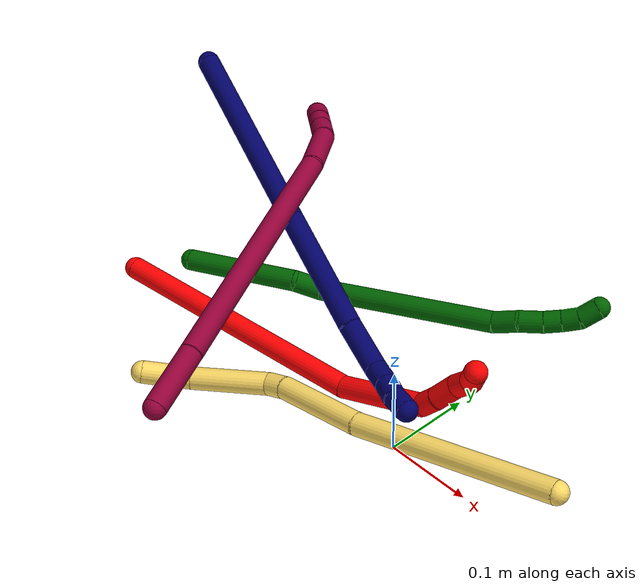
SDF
<sdf version="1.7">
 <world name="default">
  <model name="2">
   <static>0</static>
   <link name="2">
    <collision name="collision-cylinder-e_1_1_4">
     <pose>0.146229 0.02123 -0.027482 -2.48385 1.33763 -2.32636</pose>
     <geometry><cylinder><radius>0.0125</radius><length>0.300592</length></cylinder></geometry>
     <surface>
      <friction><ode><mu>1.16</mu><mu2>1.16</mu2><slip1>0</slip1><slip2>0</slip2></ode></friction>
      <contact><ode><kp>1e+06</kp><kd>1</kd><max_vel>0</max_vel><min_depth>0.001</min_depth></ode></contact>
     </surface>
    </collision>
    <visual name="visual-cylinder-e_1_1_4">
     <pose>0.146229 0.02123 -0.027482 -2.48385 1.33763 -2.32636</pose>
     <geometry><cylinder><radius>0.0125</radius><length>0.300592</length></cylinder></geometry>
     <material><ambient>1 0 0 1</ambient></material>
    </visual>
    <collision name="collision-cylinder-e_2_4_5">
     <pose>0.339623 0.036436 -0.078152 2.88744 1.10081 2.73106</pose>
     <geometry><cylinder><radius>0.0125</radius><length>0.105803</length></cylinder></geometry>
     <surface>
      <friction><ode><mu>1.16</mu><mu2>1.16</mu2><slip1>0</slip1><slip2>0</slip2></ode></friction>
      <contact><ode><kp>1e+06</kp><kd>1</kd><max_vel>0</max_vel><min_depth>0.001</min_depth></ode></contact>
     </surface>
    </collision>
    <visual name="visual-cylinder-e_2_4_5">
     <pose>0.339623 0.036436 -0.078152 2.88744 1.10081 2.73106</pose>
     <geometry><cylinder><radius>0.0125</radius><length>0.105803</length></cylinder></geometry>
     <material><ambient>1 0 0 1</ambient></material>
    </visual>
    <collision name="collision-cylinder-e_3_5_6">
     <pose>0.393759 0.024381 -0.107429 2.36093 0.682768 1.4246</pose>
     <geometry><cylinder><radius>0.0125</radius><length>0.022094</length></cylinder></geometry>
     <surface>
      <friction><ode><mu>1.16</mu><mu2>1.16</mu2><slip1>0</slip1><slip2>0</slip2></ode></friction>
      <contact><ode><kp>1e+06</kp><kd>1</kd><max_vel>0</max_vel><min_depth>0.001</min_depth></ode></contact>
     </surface>
    </collision>
    <visual name="visual-cylinder-e_3_5_6">
     <pose>0.393759 0.024381 -0.107429 2.36093 0.682768 1.4246</pose>
     <geometry><cylinder><radius>0.0125</radius><length>0.022094</length></cylinder></geometry>
     <material><ambient>1 0 0 1</ambient></material>
    </visual>
    <collision name="collision-cylinder-e_4_6_7">
     <pose>0.409081 0.009096 -0.120306 2.20373 0.629165 1.14184</pose>
     <geometry><cylinder><radius>0.0125</radius><length>0.028386</length></cylinder></geometry>
     <surface>
      <friction><ode><mu>1.16</mu><mu2>1.16</mu2><slip1>0</slip1><slip2>0</slip2></ode></friction>
      <contact><ode><kp>1e+06</kp><kd>1</kd><max_vel>0</max_vel><min_depth>0.001</min_depth></ode></contact>
     </surface>
    </collision>
    <visual name="visual-cylinder-e_4_6_7">
     <pose>0.409081 0.009096 -0.120306 2.20373 0.629165 1.14184</pose>
     <geometry><cylinder><radius>0.0125</radius><length>0.028386</length></cylinder></geometry>
     <material><ambient>1 0 0 1</ambient></material>
    </visual>
    <collision name="collision-cylinder-e_5_7_8">
     <pose>0.424549 -0.004786 -0.134119 2.5589 0.701964 1.76911</pose>
     <geometry><cylinder><radius>0.0125</radius><length>0.022039</length></cylinder></geometry>
     <surface>
      <friction><ode><mu>1.16</mu><mu2>1.16</mu2><slip1>0</slip1><slip2>0</slip2></ode></friction>
      <contact><ode><kp>1e+06</kp><kd>1</kd><max_vel>0</max_vel><min_depth>0.001</min_depth></ode></contact>
     </surface>
    </collision>
    <visual name="visual-cylinder-e_5_7_8">
     <pose>0.424549 -0.004786 -0.134119 2.5589 0.701964 1.76911</pose>
     <geometry><cylinder><radius>0.0125</radius><length>0.022039</length></cylinder></geometry>
     <material><ambient>1 0 0 1</ambient></material>
    </visual>
    <collision name="collision-cylinder-e_6_8_2">
     <pose>0.433682 -0.014312 -0.150262 2.64879 0.19258 0.733326</pose>
     <geometry><cylinder><radius>0.0125</radius><length>0.021087</length></cylinder></geometry>
     <surface>
      <friction><ode><mu>1.16</mu><mu2>1.16</mu2><slip1>0</slip1><slip2>0</slip2></ode></friction>
      <contact><ode><kp>1e+06</kp><kd>1</kd><max_vel>0</max_vel><min_depth>0.001</min_depth></ode></contact>
     </surface>
    </collision>
    <visual name="visual-cylinder-e_6_8_2">
     <pose>0.433682 -0.014312 -0.150262 2.64879 0.19258 0.733326</pose>
     <geometry><cylinder><radius>0.0125</radius><length>0.021087</length></cylinder></geometry>
     <material><ambient>1 0 0 1</ambient></material>
    </visual>
    <collision name="collision-sphere-2">
     <pose>0.4357 -0.019208 -0.159379 0 -0 0</pose>
     <geometry><sphere><radius>0.0125</radius></sphere></geometry>
     <surface>
      <friction><ode><mu>1.16</mu><mu2>1.16</mu2><slip1>0</slip1><slip2>0</slip2></ode></friction>
      <contact><ode><kp>1e+06</kp><kd>1</kd><max_vel>0</max_vel><min_depth>0.001</min_depth></ode></contact>
     </surface>
    </collision>
    <visual name="visual-sphere-2">
     <pose>0.4357 -0.019208 -0.159379 0 -0 0</pose>
     <geometry><sphere><radius>0.0125</radius></sphere></geometry>
     <material><ambient>1 0 0 1</ambient></material>
    </visual>
    <collision name="collision-sphere-4">
     <pose>0.292458 0.042459 -0.054964 0 -0 0</pose>
     <geometry><sphere><radius>0.0125</radius></sphere></geometry>
     <surface>
      <friction><ode><mu>1.16</mu><mu2>1.16</mu2><slip1>0</slip1><slip2>0</slip2></ode></friction>
      <contact><ode><kp>1e+06</kp><kd>1</kd><max_vel>0</max_vel><min_depth>0.001</min_depth></ode></contact>
     </surface>
    </collision>
    <visual name="visual-sphere-4">
     <pose>0.292458 0.042459 -0.054964 0 -0 0</pose>
     <geometry><sphere><radius>0.0125</radius></sphere></geometry>
     <material><ambient>1 0 0 1</ambient></material>
    </visual>
    <collision name="collision-sphere-1">
     <geometry><sphere><radius>0.0125</radius></sphere></geometry>
     <surface>
      <friction><ode><mu>1.16</mu><mu2>1.16</mu2><slip1>0</slip1><slip2>0</slip2></ode></friction>
      <contact><ode><kp>1e+06</kp><kd>1</kd><max_vel>0</max_vel><min_depth>0.001</min_depth></ode></contact>
     </surface>
    </collision>
    <visual name="visual-sphere-1">
     <geometry><sphere><radius>0.0125</radius></sphere></geometry>
     <material><ambient>1 0 0 1</ambient></material>
    </visual>
    <collision name="collision-sphere-8">
     <pose>0.431664 -0.009416 -0.141145 0 -0 0</pose>
     <geometry><sphere><radius>0.0125</radius></sphere></geometry>
     <surface>
      <friction><ode><mu>1.16</mu><mu2>1.16</mu2><slip1>0</slip1><slip2>0</slip2></ode></friction>
      <contact><ode><kp>1e+06</kp><kd>1</kd><max_vel>0</max_vel><min_depth>0.001</min_depth></ode></contact>
     </surface>
    </collision>
    <visual name="visual-sphere-8">
     <pose>0.431664 -0.009416 -0.141145 0 -0 0</pose>
     <geometry><sphere><radius>0.0125</radius></sphere></geometry>
     <material><ambient>1 0 0 1</ambient></material>
    </visual>
    <collision name="collision-sphere-5">
     <pose>0.386789 0.030412 -0.10134 0 -0 0</pose>
     <geometry><sphere><radius>0.0125</radius></sphere></geometry>
     <surface>
      <friction><ode><mu>1.16</mu><mu2>1.16</mu2><slip1>0</slip1><slip2>0</slip2></ode></friction>
      <contact><ode><kp>1e+06</kp><kd>1</kd><max_vel>0</max_vel><min_depth>0.001</min_depth></ode></contact>
     </surface>
    </collision>
    <visual name="visual-sphere-5">
     <pose>0.386789 0.030412 -0.10134 0 -0 0</pose>
     <geometry><sphere><radius>0.0125</radius></sphere></geometry>
     <material><ambient>1 0 0 1</ambient></material>
    </visual>
    <collision name="collision-sphere-6">
     <pose>0.400729 0.018349 -0.113518 0 -0 0</pose>
     <geometry><sphere><radius>0.0125</radius></sphere></geometry>
     <surface>
      <friction><ode><mu>1.16</mu><mu2>1.16</mu2><slip1>0</slip1><slip2>0</slip2></ode></friction>
      <contact><ode><kp>1e+06</kp><kd>1</kd><max_vel>0</max_vel><min_depth>0.001</min_depth></ode></contact>
     </surface>
    </collision>
    <visual name="visual-sphere-6">
     <pose>0.400729 0.018349 -0.113518 0 -0 0</pose>
     <geometry><sphere><radius>0.0125</radius></sphere></geometry>
     <material><ambient>1 0 0 1</ambient></material>
    </visual>
    <collision name="collision-sphere-7">
     <pose>0.417433 -0.000156 -0.127094 0 -0 0</pose>
     <geometry><sphere><radius>0.0125</radius></sphere></geometry>
     <surface>
      <friction><ode><mu>1.16</mu><mu2>1.16</mu2><slip1>0</slip1><slip2>0</slip2></ode></friction>
      <contact><ode><kp>1e+06</kp><kd>1</kd><max_vel>0</max_vel><min_depth>0.001</min_depth></ode></contact>
     </surface>
    </collision>
    <visual name="visual-sphere-7">
     <pose>0.417433 -0.000156 -0.127094 0 -0 0</pose>
     <geometry><sphere><radius>0.0125</radius></sphere></geometry>
     <material><ambient>1 0 0 1</ambient></material>
    </visual>
    <inertial>
     <pose>0.237403 0.021252 -0.056885 0 -0 0</pose>
     <mass>0.5</mass>
     <inertia>
      <ixx>-0.000725</ixx>
      <ixy>0</ixy>
      <ixz>0</ixz>
      <iyy>0.001961</iyy>
      <iyz>0</iyz>
      <izz>-0.002627</izz>
     </inertia>
    </inertial>
   </link>
   <pose>-0.388506 -0.038365 0.04103 -2.33399 0.124027 0.420526</pose>
  </model>
  <model name="5">
   <static>0</static>
   <link name="5">
    <collision name="collision-cylinder-e_1_1_4">
     <pose>0.023542 0.006061 -0.011913 -2.67096 1.05442 -2.36026</pose>
     <geometry><cylinder><radius>0.0125</radius><length>0.054143</length></cylinder></geometry>
     <surface>
      <friction><ode><mu>1.16</mu><mu2>1.16</mu2><slip1>0</slip1><slip2>0</slip2></ode></friction>
      <contact><ode><kp>1e+06</kp><kd>1</kd><max_vel>0</max_vel><min_depth>0.001</min_depth></ode></contact>
     </surface>
    </collision>
    <visual name="visual-cylinder-e_1_1_4">
     <pose>0.023542 0.006061 -0.011913 -2.67096 1.05442 -2.36026</pose>
     <geometry><cylinder><radius>0.0125</radius><length>0.054143</length></cylinder></geometry>
     <material><ambient>1 0.858824 0.4 1</ambient></material>
    </visual>
    <collision name="collision-cylinder-e_2_4_5">
     <pose>0.088313 0.025458 -0.031512 -2.09364 1.21348 -1.75304</pose>
     <geometry><cylinder><radius>0.0125</radius><length>0.08802</length></cylinder></geometry>
     <surface>
      <friction><ode><mu>1.16</mu><mu2>1.16</mu2><slip1>0</slip1><slip2>0</slip2></ode></friction>
      <contact><ode><kp>1e+06</kp><kd>1</kd><max_vel>0</max_vel><min_depth>0.001</min_depth></ode></contact>
     </surface>
    </collision>
    <visual name="visual-cylinder-e_2_4_5">
     <pose>0.088313 0.025458 -0.031512 -2.09364 1.21348 -1.75304</pose>
     <geometry><cylinder><radius>0.0125</radius><length>0.08802</length></cylinder></geometry>
     <material><ambient>1 0.858824 0.4 1</ambient></material>
    </visual>
    <collision name="collision-cylinder-e_3_5_6">
     <pose>0.140415 0.040856 -0.036778 -0.705263 1.28631 -0.538242</pose>
     <geometry><cylinder><radius>0.0125</radius><length>0.022654</length></cylinder></geometry>
     <surface>
      <friction><ode><mu>1.16</mu><mu2>1.16</mu2><slip1>0</slip1><slip2>0</slip2></ode></friction>
      <contact><ode><kp>1e+06</kp><kd>1</kd><max_vel>0</max_vel><min_depth>0.001</min_depth></ode></contact>
     </surface>
    </collision>
    <visual name="visual-cylinder-e_3_5_6">
     <pose>0.140415 0.040856 -0.036778 -0.705263 1.28631 -0.538242</pose>
     <geometry><cylinder><radius>0.0125</radius><length>0.022654</length></cylinder></geometry>
     <material><ambient>1 0.858824 0.4 1</ambient></material>
    </visual>
    <collision name="collision-cylinder-e_4_6_7">
     <pose>0.202023 0.043635 -0.021772 -0.056994 1.32727 -0.044571</pose>
     <geometry><cylinder><radius>0.0125</radius><length>0.104557</length></cylinder></geometry>
     <surface>
      <friction><ode><mu>1.16</mu><mu2>1.16</mu2><slip1>0</slip1><slip2>0</slip2></ode></friction>
      <contact><ode><kp>1e+06</kp><kd>1</kd><max_vel>0</max_vel><min_depth>0.001</min_depth></ode></contact>
     </surface>
    </collision>
    <visual name="visual-cylinder-e_4_6_7">
     <pose>0.202023 0.043635 -0.021772 -0.056994 1.32727 -0.044571</pose>
     <geometry><cylinder><radius>0.0125</radius><length>0.104557</length></cylinder></geometry>
     <material><ambient>1 0.858824 0.4 1</ambient></material>
    </visual>
    <collision name="collision-cylinder-e_5_7_2">
     <pose>0.366046 0.057449 0.00789 -0.654236 1.38306 -0.547719</pose>
     <geometry><cylinder><radius>0.0125</radius><length>0.230627</length></cylinder></geometry>
     <surface>
      <friction><ode><mu>1.16</mu><mu2>1.16</mu2><slip1>0</slip1><slip2>0</slip2></ode></friction>
      <contact><ode><kp>1e+06</kp><kd>1</kd><max_vel>0</max_vel><min_depth>0.001</min_depth></ode></contact>
     </surface>
    </collision>
    <visual name="visual-cylinder-e_5_7_2">
     <pose>0.366046 0.057449 0.00789 -0.654236 1.38306 -0.547719</pose>
     <geometry><cylinder><radius>0.0125</radius><length>0.230627</length></cylinder></geometry>
     <material><ambient>1 0.858824 0.4 1</ambient></material>
    </visual>
    <collision name="collision-sphere-2">
     <pose>0.479333 0.070546 0.024967 0 -0 0</pose>
     <geometry><sphere><radius>0.0125</radius></sphere></geometry>
     <surface>
      <friction><ode><mu>1.16</mu><mu2>1.16</mu2><slip1>0</slip1><slip2>0</slip2></ode></friction>
      <contact><ode><kp>1e+06</kp><kd>1</kd><max_vel>0</max_vel><min_depth>0.001</min_depth></ode></contact>
     </surface>
    </collision>
    <visual name="visual-sphere-2">
     <pose>0.479333 0.070546 0.024967 0 -0 0</pose>
     <geometry><sphere><radius>0.0125</radius></sphere></geometry>
     <material><ambient>1 0.858824 0.4 1</ambient></material>
    </visual>
    <collision name="collision-sphere-7">
     <pose>0.252759 0.044353 -0.009187 0 -0 0</pose>
     <geometry><sphere><radius>0.0125</radius></sphere></geometry>
     <surface>
      <friction><ode><mu>1.16</mu><mu2>1.16</mu2><slip1>0</slip1><slip2>0</slip2></ode></friction>
      <contact><ode><kp>1e+06</kp><kd>1</kd><max_vel>0</max_vel><min_depth>0.001</min_depth></ode></contact>
     </surface>
    </collision>
    <visual name="visual-sphere-7">
     <pose>0.252759 0.044353 -0.009187 0 -0 0</pose>
     <geometry><sphere><radius>0.0125</radius></sphere></geometry>
     <material><ambient>1 0.858824 0.4 1</ambient></material>
    </visual>
    <collision name="collision-sphere-6">
     <pose>0.151287 0.042917 -0.034357 0 -0 0</pose>
     <geometry><sphere><radius>0.0125</radius></sphere></geometry>
     <surface>
      <friction><ode><mu>1.16</mu><mu2>1.16</mu2><slip1>0</slip1><slip2>0</slip2></ode></friction>
      <contact><ode><kp>1e+06</kp><kd>1</kd><max_vel>0</max_vel><min_depth>0.001</min_depth></ode></contact>
     </surface>
    </collision>
    <visual name="visual-sphere-6">
     <pose>0.151287 0.042917 -0.034357 0 -0 0</pose>
     <geometry><sphere><radius>0.0125</radius></sphere></geometry>
     <material><ambient>1 0.858824 0.4 1</ambient></material>
    </visual>
    <collision name="collision-sphere-5">
     <pose>0.129543 0.038795 -0.039199 0 -0 0</pose>
     <geometry><sphere><radius>0.0125</radius></sphere></geometry>
     <surface>
      <friction><ode><mu>1.16</mu><mu2>1.16</mu2><slip1>0</slip1><slip2>0</slip2></ode></friction>
      <contact><ode><kp>1e+06</kp><kd>1</kd><max_vel>0</max_vel><min_depth>0.001</min_depth></ode></contact>
     </surface>
    </collision>
    <visual name="visual-sphere-5">
     <pose>0.129543 0.038795 -0.039199 0 -0 0</pose>
     <geometry><sphere><radius>0.0125</radius></sphere></geometry>
     <material><ambient>1 0.858824 0.4 1</ambient></material>
    </visual>
    <collision name="collision-sphere-1">
     <geometry><sphere><radius>0.0125</radius></sphere></geometry>
     <surface>
      <friction><ode><mu>1.16</mu><mu2>1.16</mu2><slip1>0</slip1><slip2>0</slip2></ode></friction>
      <contact><ode><kp>1e+06</kp><kd>1</kd><max_vel>0</max_vel><min_depth>0.001</min_depth></ode></contact>
     </surface>
    </collision>
    <visual name="visual-sphere-1">
     <geometry><sphere><radius>0.0125</radius></sphere></geometry>
     <material><ambient>1 0.858824 0.4 1</ambient></material>
    </visual>
    <collision name="collision-sphere-4">
     <pose>0.047083 0.012122 -0.023826 0 -0 0</pose>
     <geometry><sphere><radius>0.0125</radius></sphere></geometry>
     <surface>
      <friction><ode><mu>1.16</mu><mu2>1.16</mu2><slip1>0</slip1><slip2>0</slip2></ode></friction>
      <contact><ode><kp>1e+06</kp><kd>1</kd><max_vel>0</max_vel><min_depth>0.001</min_depth></ode></contact>
     </surface>
    </collision>
    <visual name="visual-sphere-4">
     <pose>0.047083 0.012122 -0.023826 0 -0 0</pose>
     <geometry><sphere><radius>0.0125</radius></sphere></geometry>
     <material><ambient>1 0.858824 0.4 1</ambient></material>
    </visual>
    <inertial>
     <pose>0.235544 0.042612 -0.009417 0 -0 0</pose>
     <mass>0.5</mass>
     <inertia>
      <ixx>8.9e-05</ixx>
      <ixy>0</ixy>
      <ixz>0</ixz>
      <iyy>0.001066</iyy>
      <iyz>0</iyz>
      <izz>-0.00132</izz>
     </inertia>
    </inertial>
   </link>
   <pose>-0.256641 -0.129791 0.018877 0.913451 0.030039 0.250685</pose>
  </model>
  <model name="6">
   <static>0</static>
   <link name="6">
    <collision name="collision-cylinder-e_1_1_4">
     <pose>0.053654 0.040882 -0.001244 -1.60122 0.919466 -0.943892</pose>
     <geometry><cylinder><radius>0.0125</radius><length>0.134932</length></cylinder></geometry>
     <surface>
      <friction><ode><mu>1.16</mu><mu2>1.16</mu2><slip1>0</slip1><slip2>0</slip2></ode></friction>
      <contact><ode><kp>1e+06</kp><kd>1</kd><max_vel>0</max_vel><min_depth>0.001</min_depth></ode></contact>
     </surface>
    </collision>
    <visual name="visual-cylinder-e_1_1_4">
     <pose>0.053654 0.040882 -0.001244 -1.60122 0.919466 -0.943892</pose>
     <geometry><cylinder><radius>0.0125</radius><length>0.134932</length></cylinder></geometry>
     <material><ambient>0 0.392157 0.003922 1</ambient></material>
    </visual>
    <collision name="collision-cylinder-e_2_4_5">
     <pose>0.116462 0.093495 -0.008424 -2.03916 0.6082 -0.943998</pose>
     <geometry><cylinder><radius>0.0125</radius><length>0.032039</length></cylinder></geometry>
     <surface>
      <friction><ode><mu>1.16</mu><mu2>1.16</mu2><slip1>0</slip1><slip2>0</slip2></ode></friction>
      <contact><ode><kp>1e+06</kp><kd>1</kd><max_vel>0</max_vel><min_depth>0.001</min_depth></ode></contact>
     </surface>
    </collision>
    <visual name="visual-cylinder-e_2_4_5">
     <pose>0.116462 0.093495 -0.008424 -2.03916 0.6082 -0.943998</pose>
     <geometry><cylinder><radius>0.0125</radius><length>0.032039</length></cylinder></geometry>
     <material><ambient>0 0.392157 0.003922 1</ambient></material>
    </visual>
    <collision name="collision-cylinder-e_3_5_6">
     <pose>0.210934 0.167563 -0.012676 -1.54381 0.939633 -0.918021</pose>
     <geometry><cylinder><radius>0.0125</radius><length>0.211359</length></cylinder></geometry>
     <surface>
      <friction><ode><mu>1.16</mu><mu2>1.16</mu2><slip1>0</slip1><slip2>0</slip2></ode></friction>
      <contact><ode><kp>1e+06</kp><kd>1</kd><max_vel>0</max_vel><min_depth>0.001</min_depth></ode></contact>
     </surface>
    </collision>
    <visual name="visual-cylinder-e_3_5_6">
     <pose>0.210934 0.167563 -0.012676 -1.54381 0.939633 -0.918021</pose>
     <geometry><cylinder><radius>0.0125</radius><length>0.211359</length></cylinder></geometry>
     <material><ambient>0 0.392157 0.003922 1</ambient></material>
    </visual>
    <collision name="collision-cylinder-e_4_6_7">
     <pose>0.30706 0.238954 -0.007583 -1.21056 0.840578 -0.599808</pose>
     <geometry><cylinder><radius>0.0125</radius><length>0.02901</length></cylinder></geometry>
     <surface>
      <friction><ode><mu>1.16</mu><mu2>1.16</mu2><slip1>0</slip1><slip2>0</slip2></ode></friction>
      <contact><ode><kp>1e+06</kp><kd>1</kd><max_vel>0</max_vel><min_depth>0.001</min_depth></ode></contact>
     </surface>
    </collision>
    <visual name="visual-cylinder-e_4_6_7">
     <pose>0.30706 0.238954 -0.007583 -1.21056 0.840578 -0.599808</pose>
     <geometry><cylinder><radius>0.0125</radius><length>0.02901</length></cylinder></geometry>
     <material><ambient>0 0.392157 0.003922 1</ambient></material>
    </visual>
    <collision name="collision-cylinder-e_5_7_8">
     <pose>0.326837 0.258491 -0.003884 -1.54326 0.707639 -0.689927</pose>
     <geometry><cylinder><radius>0.0125</radius><length>0.0276</length></cylinder></geometry>
     <surface>
      <friction><ode><mu>1.16</mu><mu2>1.16</mu2><slip1>0</slip1><slip2>0</slip2></ode></friction>
      <contact><ode><kp>1e+06</kp><kd>1</kd><max_vel>0</max_vel><min_depth>0.001</min_depth></ode></contact>
     </surface>
    </collision>
    <visual name="visual-cylinder-e_5_7_8">
     <pose>0.326837 0.258491 -0.003884 -1.54326 0.707639 -0.689927</pose>
     <geometry><cylinder><radius>0.0125</radius><length>0.0276</length></cylinder></geometry>
     <material><ambient>0 0.392157 0.003922 1</ambient></material>
    </visual>
    <collision name="collision-cylinder-e_6_8_9">
     <pose>0.342043 0.27725 -0.002426 -1.43046 0.64093 -0.561401</pose>
     <geometry><cylinder><radius>0.0125</radius><length>0.020855</length></cylinder></geometry>
     <surface>
      <friction><ode><mu>1.16</mu><mu2>1.16</mu2><slip1>0</slip1><slip2>0</slip2></ode></friction>
      <contact><ode><kp>1e+06</kp><kd>1</kd><max_vel>0</max_vel><min_depth>0.001</min_depth></ode></contact>
     </surface>
    </collision>
    <visual name="visual-cylinder-e_6_8_9">
     <pose>0.342043 0.27725 -0.002426 -1.43046 0.64093 -0.561401</pose>
     <geometry><cylinder><radius>0.0125</radius><length>0.020855</length></cylinder></geometry>
     <material><ambient>0 0.392157 0.003922 1</ambient></material>
    </visual>
    <collision name="collision-cylinder-e_7_9_10">
     <pose>0.354798 0.293143 0.001275 -1.24984 0.682152 -0.50132</pose>
     <geometry><cylinder><radius>0.0125</radius><length>0.020682</length></cylinder></geometry>
     <surface>
      <friction><ode><mu>1.16</mu><mu2>1.16</mu2><slip1>0</slip1><slip2>0</slip2></ode></friction>
      <contact><ode><kp>1e+06</kp><kd>1</kd><max_vel>0</max_vel><min_depth>0.001</min_depth></ode></contact>
     </surface>
    </collision>
    <visual name="visual-cylinder-e_7_9_10">
     <pose>0.354798 0.293143 0.001275 -1.24984 0.682152 -0.50132</pose>
     <geometry><cylinder><radius>0.0125</radius><length>0.020682</length></cylinder></geometry>
     <material><ambient>0 0.392157 0.003922 1</ambient></material>
    </visual>
    <collision name="collision-cylinder-e_8_10_2">
     <pose>0.365843 0.309855 0.009735 -0.993235 0.394989 -0.216035</pose>
     <geometry><cylinder><radius>0.0125</radius><length>0.023524</length></cylinder></geometry>
     <surface>
      <friction><ode><mu>1.16</mu><mu2>1.16</mu2><slip1>0</slip1><slip2>0</slip2></ode></friction>
      <contact><ode><kp>1e+06</kp><kd>1</kd><max_vel>0</max_vel><min_depth>0.001</min_depth></ode></contact>
     </surface>
    </collision>
    <visual name="visual-cylinder-e_8_10_2">
     <pose>0.365843 0.309855 0.009735 -0.993235 0.394989 -0.216035</pose>
     <geometry><cylinder><radius>0.0125</radius><length>0.023524</length></cylinder></geometry>
     <material><ambient>0 0.392157 0.003922 1</ambient></material>
    </visual>
    <collision name="collision-sphere-2">
     <pose>0.370369 0.31895 0.015662 0 -0 0</pose>
     <geometry><sphere><radius>0.0125</radius></sphere></geometry>
     <surface>
      <friction><ode><mu>1.16</mu><mu2>1.16</mu2><slip1>0</slip1><slip2>0</slip2></ode></friction>
      <contact><ode><kp>1e+06</kp><kd>1</kd><max_vel>0</max_vel><min_depth>0.001</min_depth></ode></contact>
     </surface>
    </collision>
    <visual name="visual-sphere-2">
     <pose>0.370369 0.31895 0.015662 0 -0 0</pose>
     <geometry><sphere><radius>0.0125</radius></sphere></geometry>
     <material><ambient>0 0.392157 0.003922 1</ambient></material>
    </visual>
    <collision name="collision-sphere-10">
     <pose>0.361317 0.300759 0.003807 0 -0 0</pose>
     <geometry><sphere><radius>0.0125</radius></sphere></geometry>
     <surface>
      <friction><ode><mu>1.16</mu><mu2>1.16</mu2><slip1>0</slip1><slip2>0</slip2></ode></friction>
      <contact><ode><kp>1e+06</kp><kd>1</kd><max_vel>0</max_vel><min_depth>0.001</min_depth></ode></contact>
     </surface>
    </collision>
    <visual name="visual-sphere-10">
     <pose>0.361317 0.300759 0.003807 0 -0 0</pose>
     <geometry><sphere><radius>0.0125</radius></sphere></geometry>
     <material><ambient>0 0.392157 0.003922 1</ambient></material>
    </visual>
    <collision name="collision-sphere-9">
     <pose>0.348278 0.285526 -0.001257 0 -0 0</pose>
     <geometry><sphere><radius>0.0125</radius></sphere></geometry>
     <surface>
      <friction><ode><mu>1.16</mu><mu2>1.16</mu2><slip1>0</slip1><slip2>0</slip2></ode></friction>
      <contact><ode><kp>1e+06</kp><kd>1</kd><max_vel>0</max_vel><min_depth>0.001</min_depth></ode></contact>
     </surface>
    </collision>
    <visual name="visual-sphere-9">
     <pose>0.348278 0.285526 -0.001257 0 -0 0</pose>
     <geometry><sphere><radius>0.0125</radius></sphere></geometry>
     <material><ambient>0 0.392157 0.003922 1</ambient></material>
    </visual>
    <collision name="collision-sphere-4">
     <pose>0.107308 0.081764 -0.002489 0 -0 0</pose>
     <geometry><sphere><radius>0.0125</radius></sphere></geometry>
     <surface>
      <friction><ode><mu>1.16</mu><mu2>1.16</mu2><slip1>0</slip1><slip2>0</slip2></ode></friction>
      <contact><ode><kp>1e+06</kp><kd>1</kd><max_vel>0</max_vel><min_depth>0.001</min_depth></ode></contact>
     </surface>
    </collision>
    <visual name="visual-sphere-4">
     <pose>0.107308 0.081764 -0.002489 0 -0 0</pose>
     <geometry><sphere><radius>0.0125</radius></sphere></geometry>
     <material><ambient>0 0.392157 0.003922 1</ambient></material>
    </visual>
    <collision name="collision-sphere-1">
     <geometry><sphere><radius>0.0125</radius></sphere></geometry>
     <surface>
      <friction><ode><mu>1.16</mu><mu2>1.16</mu2><slip1>0</slip1><slip2>0</slip2></ode></friction>
      <contact><ode><kp>1e+06</kp><kd>1</kd><max_vel>0</max_vel><min_depth>0.001</min_depth></ode></contact>
     </surface>
    </collision>
    <visual name="visual-sphere-1">
     <geometry><sphere><radius>0.0125</radius></sphere></geometry>
     <material><ambient>0 0.392157 0.003922 1</ambient></material>
    </visual>
    <collision name="collision-sphere-8">
     <pose>0.335808 0.268974 -0.003596 0 -0 0</pose>
     <geometry><sphere><radius>0.0125</radius></sphere></geometry>
     <surface>
      <friction><ode><mu>1.16</mu><mu2>1.16</mu2><slip1>0</slip1><slip2>0</slip2></ode></friction>
      <contact><ode><kp>1e+06</kp><kd>1</kd><max_vel>0</max_vel><min_depth>0.001</min_depth></ode></contact>
     </surface>
    </collision>
    <visual name="visual-sphere-8">
     <pose>0.335808 0.268974 -0.003596 0 -0 0</pose>
     <geometry><sphere><radius>0.0125</radius></sphere></geometry>
     <material><ambient>0 0.392157 0.003922 1</ambient></material>
    </visual>
    <collision name="collision-sphere-5">
     <pose>0.125615 0.105226 -0.014359 0 -0 0</pose>
     <geometry><sphere><radius>0.0125</radius></sphere></geometry>
     <surface>
      <friction><ode><mu>1.16</mu><mu2>1.16</mu2><slip1>0</slip1><slip2>0</slip2></ode></friction>
      <contact><ode><kp>1e+06</kp><kd>1</kd><max_vel>0</max_vel><min_depth>0.001</min_depth></ode></contact>
     </surface>
    </collision>
    <visual name="visual-sphere-5">
     <pose>0.125615 0.105226 -0.014359 0 -0 0</pose>
     <geometry><sphere><radius>0.0125</radius></sphere></geometry>
     <material><ambient>0 0.392157 0.003922 1</ambient></material>
    </visual>
    <collision name="collision-sphere-6">
     <pose>0.296254 0.2299 -0.010994 0 -0 0</pose>
     <geometry><sphere><radius>0.0125</radius></sphere></geometry>
     <surface>
      <friction><ode><mu>1.16</mu><mu2>1.16</mu2><slip1>0</slip1><slip2>0</slip2></ode></friction>
      <contact><ode><kp>1e+06</kp><kd>1</kd><max_vel>0</max_vel><min_depth>0.001</min_depth></ode></contact>
     </surface>
    </collision>
    <visual name="visual-sphere-6">
     <pose>0.296254 0.2299 -0.010994 0 -0 0</pose>
     <geometry><sphere><radius>0.0125</radius></sphere></geometry>
     <material><ambient>0 0.392157 0.003922 1</ambient></material>
    </visual>
    <collision name="collision-sphere-7">
     <pose>0.317867 0.248009 -0.004173 0 -0 0</pose>
     <geometry><sphere><radius>0.0125</radius></sphere></geometry>
     <surface>
      <friction><ode><mu>1.16</mu><mu2>1.16</mu2><slip1>0</slip1><slip2>0</slip2></ode></friction>
      <contact><ode><kp>1e+06</kp><kd>1</kd><max_vel>0</max_vel><min_depth>0.001</min_depth></ode></contact>
     </surface>
    </collision>
    <visual name="visual-sphere-7">
     <pose>0.317867 0.248009 -0.004173 0 -0 0</pose>
     <geometry><sphere><radius>0.0125</radius></sphere></geometry>
     <material><ambient>0 0.392157 0.003922 1</ambient></material>
    </visual>
    <inertial>
     <pose>0.193119 0.154256 -0.006479 0 -0 0</pose>
     <mass>0.5</mass>
     <inertia>
      <ixx>-8.5e-05</ixx>
      <ixy>0</ixy>
      <ixz>0</ixz>
      <iyy>0.000203</iyy>
      <iyz>0</iyz>
      <izz>-0.001424</izz>
     </inertia>
    </inertial>
   </link>
   <pose>-0.383502 0.036914 0.017247 0.032466 -0.041218 -0.200203</pose>
  </model>
  <model name="7">
   <static>0</static>
   <link name="7">
    <collision name="collision-cylinder-e_1_1_4">
     <pose>0.053928 -0.012114 -0.101039 3.02227 0.487308 2.66996</pose>
     <geometry><cylinder><radius>0.0125</radius><length>0.230338</length></cylinder></geometry>
     <surface>
      <friction><ode><mu>1.16</mu><mu2>1.16</mu2><slip1>0</slip1><slip2>0</slip2></ode></friction>
      <contact><ode><kp>1e+06</kp><kd>1</kd><max_vel>0</max_vel><min_depth>0.001</min_depth></ode></contact>
     </surface>
    </collision>
    <visual name="visual-cylinder-e_1_1_4">
     <pose>0.053928 -0.012114 -0.101039 3.02227 0.487308 2.66996</pose>
     <geometry><cylinder><radius>0.0125</radius><length>0.230338</length></cylinder></geometry>
     <material><ambient>0.003922 0 0.403922 1</ambient></material>
    </visual>
    <collision name="collision-cylinder-e_2_4_5">
     <pose>0.142009 -0.031984 -0.264643 3.01827 0.496482 2.66373</pose>
     <geometry><cylinder><radius>0.0125</radius><length>0.1434</length></cylinder></geometry>
     <surface>
      <friction><ode><mu>1.16</mu><mu2>1.16</mu2><slip1>0</slip1><slip2>0</slip2></ode></friction>
      <contact><ode><kp>1e+06</kp><kd>1</kd><max_vel>0</max_vel><min_depth>0.001</min_depth></ode></contact>
     </surface>
    </collision>
    <visual name="visual-cylinder-e_2_4_5">
     <pose>0.142009 -0.031984 -0.264643 3.01827 0.496482 2.66373</pose>
     <geometry><cylinder><radius>0.0125</radius><length>0.1434</length></cylinder></geometry>
     <material><ambient>0.003922 0 0.403922 1</ambient></material>
    </visual>
    <collision name="collision-cylinder-e_3_5_6">
     <pose>0.191473 -0.043101 -0.349774 2.99369 0.591054 2.66418</pose>
     <geometry><cylinder><radius>0.0125</radius><length>0.054955</length></cylinder></geometry>
     <surface>
      <friction><ode><mu>1.16</mu><mu2>1.16</mu2><slip1>0</slip1><slip2>0</slip2></ode></friction>
      <contact><ode><kp>1e+06</kp><kd>1</kd><max_vel>0</max_vel><min_depth>0.001</min_depth></ode></contact>
     </surface>
    </collision>
    <visual name="visual-cylinder-e_3_5_6">
     <pose>0.191473 -0.043101 -0.349774 2.99369 0.591054 2.66418</pose>
     <geometry><cylinder><radius>0.0125</radius><length>0.054955</length></cylinder></geometry>
     <material><ambient>0.003922 0 0.403922 1</ambient></material>
    </visual>
    <collision name="collision-cylinder-e_4_6_7">
     <pose>0.208231 -0.050178 -0.384823 2.8523 0.110609 0.726407</pose>
     <geometry><cylinder><radius>0.0125</radius><length>0.026205</length></cylinder></geometry>
     <surface>
      <friction><ode><mu>1.16</mu><mu2>1.16</mu2><slip1>0</slip1><slip2>0</slip2></ode></friction>
      <contact><ode><kp>1e+06</kp><kd>1</kd><max_vel>0</max_vel><min_depth>0.001</min_depth></ode></contact>
     </surface>
    </collision>
    <visual name="visual-cylinder-e_4_6_7">
     <pose>0.208231 -0.050178 -0.384823 2.8523 0.110609 0.726407</pose>
     <geometry><cylinder><radius>0.0125</radius><length>0.026205</length></cylinder></geometry>
     <material><ambient>0.003922 0 0.403922 1</ambient></material>
    </visual>
    <collision name="collision-cylinder-e_5_7_8">
     <pose>0.210611 -0.056628 -0.408227 2.89626 0.082718 0.64769</pose>
     <geometry><cylinder><radius>0.0125</radius><length>0.022598</length></cylinder></geometry>
     <surface>
      <friction><ode><mu>1.16</mu><mu2>1.16</mu2><slip1>0</slip1><slip2>0</slip2></ode></friction>
      <contact><ode><kp>1e+06</kp><kd>1</kd><max_vel>0</max_vel><min_depth>0.001</min_depth></ode></contact>
     </surface>
    </collision>
    <visual name="visual-cylinder-e_5_7_8">
     <pose>0.210611 -0.056628 -0.408227 2.89626 0.082718 0.64769</pose>
     <geometry><cylinder><radius>0.0125</radius><length>0.022598</length></cylinder></geometry>
     <material><ambient>0.003922 0 0.403922 1</ambient></material>
    </visual>
    <collision name="collision-cylinder-e_6_8_2">
     <pose>0.213569 -0.063629 -0.429363 2.74587 0.180924 0.849785</pose>
     <geometry><cylinder><radius>0.0125</radius><length>0.022504</length></cylinder></geometry>
     <surface>
      <friction><ode><mu>1.16</mu><mu2>1.16</mu2><slip1>0</slip1><slip2>0</slip2></ode></friction>
      <contact><ode><kp>1e+06</kp><kd>1</kd><max_vel>0</max_vel><min_depth>0.001</min_depth></ode></contact>
     </surface>
    </collision>
    <visual name="visual-cylinder-e_6_8_2">
     <pose>0.213569 -0.063629 -0.429363 2.74587 0.180924 0.849785</pose>
     <geometry><cylinder><radius>0.0125</radius><length>0.022504</length></cylinder></geometry>
     <material><ambient>0.003922 0 0.403922 1</ambient></material>
    </visual>
    <collision name="collision-sphere-2">
     <pose>0.215594 -0.067896 -0.439576 0 -0 0</pose>
     <geometry><sphere><radius>0.0125</radius></sphere></geometry>
     <surface>
      <friction><ode><mu>1.16</mu><mu2>1.16</mu2><slip1>0</slip1><slip2>0</slip2></ode></friction>
      <contact><ode><kp>1e+06</kp><kd>1</kd><max_vel>0</max_vel><min_depth>0.001</min_depth></ode></contact>
     </surface>
    </collision>
    <visual name="visual-sphere-2">
     <pose>0.215594 -0.067896 -0.439576 0 -0 0</pose>
     <geometry><sphere><radius>0.0125</radius></sphere></geometry>
     <material><ambient>0.003922 0 0.403922 1</ambient></material>
    </visual>
    <collision name="collision-sphere-4">
     <pose>0.107855 -0.024228 -0.202078 0 -0 0</pose>
     <geometry><sphere><radius>0.0125</radius></sphere></geometry>
     <surface>
      <friction><ode><mu>1.16</mu><mu2>1.16</mu2><slip1>0</slip1><slip2>0</slip2></ode></friction>
      <contact><ode><kp>1e+06</kp><kd>1</kd><max_vel>0</max_vel><min_depth>0.001</min_depth></ode></contact>
     </surface>
    </collision>
    <visual name="visual-sphere-4">
     <pose>0.107855 -0.024228 -0.202078 0 -0 0</pose>
     <geometry><sphere><radius>0.0125</radius></sphere></geometry>
     <material><ambient>0.003922 0 0.403922 1</ambient></material>
    </visual>
    <collision name="collision-sphere-1">
     <geometry><sphere><radius>0.0125</radius></sphere></geometry>
     <surface>
      <friction><ode><mu>1.16</mu><mu2>1.16</mu2><slip1>0</slip1><slip2>0</slip2></ode></friction>
      <contact><ode><kp>1e+06</kp><kd>1</kd><max_vel>0</max_vel><min_depth>0.001</min_depth></ode></contact>
     </surface>
    </collision>
    <visual name="visual-sphere-1">
     <geometry><sphere><radius>0.0125</radius></sphere></geometry>
     <material><ambient>0.003922 0 0.403922 1</ambient></material>
    </visual>
    <collision name="collision-sphere-8">
     <pose>0.211545 -0.059363 -0.419151 0 -0 0</pose>
     <geometry><sphere><radius>0.0125</radius></sphere></geometry>
     <surface>
      <friction><ode><mu>1.16</mu><mu2>1.16</mu2><slip1>0</slip1><slip2>0</slip2></ode></friction>
      <contact><ode><kp>1e+06</kp><kd>1</kd><max_vel>0</max_vel><min_depth>0.001</min_depth></ode></contact>
     </surface>
    </collision>
    <visual name="visual-sphere-8">
     <pose>0.211545 -0.059363 -0.419151 0 -0 0</pose>
     <geometry><sphere><radius>0.0125</radius></sphere></geometry>
     <material><ambient>0.003922 0 0.403922 1</ambient></material>
    </visual>
    <collision name="collision-sphere-5">
     <pose>0.176162 -0.039739 -0.327207 0 -0 0</pose>
     <geometry><sphere><radius>0.0125</radius></sphere></geometry>
     <surface>
      <friction><ode><mu>1.16</mu><mu2>1.16</mu2><slip1>0</slip1><slip2>0</slip2></ode></friction>
      <contact><ode><kp>1e+06</kp><kd>1</kd><max_vel>0</max_vel><min_depth>0.001</min_depth></ode></contact>
     </surface>
    </collision>
    <visual name="visual-sphere-5">
     <pose>0.176162 -0.039739 -0.327207 0 -0 0</pose>
     <geometry><sphere><radius>0.0125</radius></sphere></geometry>
     <material><ambient>0.003922 0 0.403922 1</ambient></material>
    </visual>
    <collision name="collision-sphere-6">
     <pose>0.206785 -0.046463 -0.372341 0 -0 0</pose>
     <geometry><sphere><radius>0.0125</radius></sphere></geometry>
     <surface>
      <friction><ode><mu>1.16</mu><mu2>1.16</mu2><slip1>0</slip1><slip2>0</slip2></ode></friction>
      <contact><ode><kp>1e+06</kp><kd>1</kd><max_vel>0</max_vel><min_depth>0.001</min_depth></ode></contact>
     </surface>
    </collision>
    <visual name="visual-sphere-6">
     <pose>0.206785 -0.046463 -0.372341 0 -0 0</pose>
     <geometry><sphere><radius>0.0125</radius></sphere></geometry>
     <material><ambient>0.003922 0 0.403922 1</ambient></material>
    </visual>
    <collision name="collision-sphere-7">
     <pose>0.209678 -0.053893 -0.397304 0 -0 0</pose>
     <geometry><sphere><radius>0.0125</radius></sphere></geometry>
     <surface>
      <friction><ode><mu>1.16</mu><mu2>1.16</mu2><slip1>0</slip1><slip2>0</slip2></ode></friction>
      <contact><ode><kp>1e+06</kp><kd>1</kd><max_vel>0</max_vel><min_depth>0.001</min_depth></ode></contact>
     </surface>
    </collision>
    <visual name="visual-sphere-7">
     <pose>0.209678 -0.053893 -0.397304 0 -0 0</pose>
     <geometry><sphere><radius>0.0125</radius></sphere></geometry>
     <material><ambient>0.003922 0 0.403922 1</ambient></material>
    </visual>
    <inertial>
     <pose>0.116661 -0.027544 -0.218833 0 -0 0</pose>
     <mass>0.5</mass>
     <inertia>
      <ixx>-0.000471</ixx>
      <ixy>0</ixy>
      <ixz>0</ixz>
      <iyy>0.001692</iyy>
      <iyz>0</iyz>
      <izz>-0.000506</izz>
     </inertia>
    </inertial>
   </link>
   <pose>-0.437075 0.123136 0.230269 -1.43509 1.00065 1.04902</pose>
  </model>
  <model name="8">
   <static>0</static>
   <link name="8">
    <collision name="collision-cylinder-e_1_1_4">
     <pose>-0.018829 0.001202 -0.029782 -3.10127 -0.563401 3.00246</pose>
     <geometry><cylinder><radius>0.0125</radius><length>0.070511</length></cylinder></geometry>
     <surface>
      <friction><ode><mu>1.16</mu><mu2>1.16</mu2><slip1>0</slip1><slip2>0</slip2></ode></friction>
      <contact><ode><kp>1e+06</kp><kd>1</kd><max_vel>0</max_vel><min_depth>0.001</min_depth></ode></contact>
     </surface>
    </collision>
    <visual name="visual-cylinder-e_1_1_4">
     <pose>-0.018829 0.001202 -0.029782 -3.10127 -0.563401 3.00246</pose>
     <geometry><cylinder><radius>0.0125</radius><length>0.070511</length></cylinder></geometry>
     <material><ambient>0.584314 0 0.227451 1</ambient></material>
    </visual>
    <collision name="collision-cylinder-e_2_4_5">
     <pose>-0.111621 0.020643 -0.184909 -2.99709 -0.528518 2.61887</pose>
     <geometry><cylinder><radius>0.0125</radius><length>0.293357</length></cylinder></geometry>
     <surface>
      <friction><ode><mu>1.16</mu><mu2>1.16</mu2><slip1>0</slip1><slip2>0</slip2></ode></friction>
      <contact><ode><kp>1e+06</kp><kd>1</kd><max_vel>0</max_vel><min_depth>0.001</min_depth></ode></contact>
     </surface>
    </collision>
    <visual name="visual-cylinder-e_2_4_5">
     <pose>-0.111621 0.020643 -0.184909 -2.99709 -0.528518 2.61887</pose>
     <geometry><cylinder><radius>0.0125</radius><length>0.293357</length></cylinder></geometry>
     <material><ambient>0.584314 0 0.227451 1</ambient></material>
    </visual>
    <collision name="collision-cylinder-e_3_5_6">
     <pose>-0.19556 0.048871 -0.336714 -2.78063 -0.339118 1.50713</pose>
     <geometry><cylinder><radius>0.0125</radius><length>0.059979</length></cylinder></geometry>
     <surface>
      <friction><ode><mu>1.16</mu><mu2>1.16</mu2><slip1>0</slip1><slip2>0</slip2></ode></friction>
      <contact><ode><kp>1e+06</kp><kd>1</kd><max_vel>0</max_vel><min_depth>0.001</min_depth></ode></contact>
     </surface>
    </collision>
    <visual name="visual-cylinder-e_3_5_6">
     <pose>-0.19556 0.048871 -0.336714 -2.78063 -0.339118 1.50713</pose>
     <geometry><cylinder><radius>0.0125</radius><length>0.059979</length></cylinder></geometry>
     <material><ambient>0.584314 0 0.227451 1</ambient></material>
    </visual>
    <collision name="collision-cylinder-e_4_6_7">
     <pose>-0.206042 0.066092 -0.375589 -2.61412 -0.035214 0.130239</pose>
     <geometry><cylinder><radius>0.0125</radius><length>0.028757</length></cylinder></geometry>
     <surface>
      <friction><ode><mu>1.16</mu><mu2>1.16</mu2><slip1>0</slip1><slip2>0</slip2></ode></friction>
      <contact><ode><kp>1e+06</kp><kd>1</kd><max_vel>0</max_vel><min_depth>0.001</min_depth></ode></contact>
     </surface>
    </collision>
    <visual name="visual-cylinder-e_4_6_7">
     <pose>-0.206042 0.066092 -0.375589 -2.61412 -0.035214 0.130239</pose>
     <geometry><cylinder><radius>0.0125</radius><length>0.028757</length></cylinder></geometry>
     <material><ambient>0.584314 0 0.227451 1</ambient></material>
    </visual>
    <collision name="collision-cylinder-e_5_7_8">
     <pose>-0.206931 0.078696 -0.397215 -2.61359 -0.035804 0.132273</pose>
     <geometry><cylinder><radius>0.0125</radius><length>0.021336</length></cylinder></geometry>
     <surface>
      <friction><ode><mu>1.16</mu><mu2>1.16</mu2><slip1>0</slip1><slip2>0</slip2></ode></friction>
      <contact><ode><kp>1e+06</kp><kd>1</kd><max_vel>0</max_vel><min_depth>0.001</min_depth></ode></contact>
     </surface>
    </collision>
    <visual name="visual-cylinder-e_5_7_8">
     <pose>-0.206931 0.078696 -0.397215 -2.61359 -0.035804 0.132273</pose>
     <geometry><cylinder><radius>0.0125</radius><length>0.021336</length></cylinder></geometry>
     <material><ambient>0.584314 0 0.227451 1</ambient></material>
    </visual>
    <collision name="collision-cylinder-e_6_8_2">
     <pose>-0.207819 0.091245 -0.417287 -2.55772 -0.038865 0.129163</pose>
     <geometry><cylinder><radius>0.0125</radius><length>0.026059</length></cylinder></geometry>
     <surface>
      <friction><ode><mu>1.16</mu><mu2>1.16</mu2><slip1>0</slip1><slip2>0</slip2></ode></friction>
      <contact><ode><kp>1e+06</kp><kd>1</kd><max_vel>0</max_vel><min_depth>0.001</min_depth></ode></contact>
     </surface>
    </collision>
    <visual name="visual-cylinder-e_6_8_2">
     <pose>-0.207819 0.091245 -0.417287 -2.55772 -0.038865 0.129163</pose>
     <geometry><cylinder><radius>0.0125</radius><length>0.026059</length></cylinder></geometry>
     <material><ambient>0.584314 0 0.227451 1</ambient></material>
    </visual>
    <collision name="collision-sphere-2">
     <pose>-0.208325 0.098422 -0.42815 0 -0 0</pose>
     <geometry><sphere><radius>0.0125</radius></sphere></geometry>
     <surface>
      <friction><ode><mu>1.16</mu><mu2>1.16</mu2><slip1>0</slip1><slip2>0</slip2></ode></friction>
      <contact><ode><kp>1e+06</kp><kd>1</kd><max_vel>0</max_vel><min_depth>0.001</min_depth></ode></contact>
     </surface>
    </collision>
    <visual name="visual-sphere-2">
     <pose>-0.208325 0.098422 -0.42815 0 -0 0</pose>
     <geometry><sphere><radius>0.0125</radius></sphere></geometry>
     <material><ambient>0.584314 0 0.227451 1</ambient></material>
    </visual>
    <collision name="collision-sphere-4">
     <pose>-0.037657 0.002403 -0.059564 0 -0 0</pose>
     <geometry><sphere><radius>0.0125</radius></sphere></geometry>
     <surface>
      <friction><ode><mu>1.16</mu><mu2>1.16</mu2><slip1>0</slip1><slip2>0</slip2></ode></friction>
      <contact><ode><kp>1e+06</kp><kd>1</kd><max_vel>0</max_vel><min_depth>0.001</min_depth></ode></contact>
     </surface>
    </collision>
    <visual name="visual-sphere-4">
     <pose>-0.037657 0.002403 -0.059564 0 -0 0</pose>
     <geometry><sphere><radius>0.0125</radius></sphere></geometry>
     <material><ambient>0.584314 0 0.227451 1</ambient></material>
    </visual>
    <collision name="collision-sphere-1">
     <geometry><sphere><radius>0.0125</radius></sphere></geometry>
     <surface>
      <friction><ode><mu>1.16</mu><mu2>1.16</mu2><slip1>0</slip1><slip2>0</slip2></ode></friction>
      <contact><ode><kp>1e+06</kp><kd>1</kd><max_vel>0</max_vel><min_depth>0.001</min_depth></ode></contact>
     </surface>
    </collision>
    <visual name="visual-sphere-1">
     <geometry><sphere><radius>0.0125</radius></sphere></geometry>
     <material><ambient>0.584314 0 0.227451 1</ambient></material>
    </visual>
    <collision name="collision-sphere-8">
     <pose>-0.207312 0.084068 -0.406424 0 -0 0</pose>
     <geometry><sphere><radius>0.0125</radius></sphere></geometry>
     <surface>
      <friction><ode><mu>1.16</mu><mu2>1.16</mu2><slip1>0</slip1><slip2>0</slip2></ode></friction>
      <contact><ode><kp>1e+06</kp><kd>1</kd><max_vel>0</max_vel><min_depth>0.001</min_depth></ode></contact>
     </surface>
    </collision>
    <visual name="visual-sphere-8">
     <pose>-0.207312 0.084068 -0.406424 0 -0 0</pose>
     <geometry><sphere><radius>0.0125</radius></sphere></geometry>
     <material><ambient>0.584314 0 0.227451 1</ambient></material>
    </visual>
    <collision name="collision-sphere-5">
     <pose>-0.185584 0.038882 -0.310254 0 -0 0</pose>
     <geometry><sphere><radius>0.0125</radius></sphere></geometry>
     <surface>
      <friction><ode><mu>1.16</mu><mu2>1.16</mu2><slip1>0</slip1><slip2>0</slip2></ode></friction>
      <contact><ode><kp>1e+06</kp><kd>1</kd><max_vel>0</max_vel><min_depth>0.001</min_depth></ode></contact>
     </surface>
    </collision>
    <visual name="visual-sphere-5">
     <pose>-0.185584 0.038882 -0.310254 0 -0 0</pose>
     <geometry><sphere><radius>0.0125</radius></sphere></geometry>
     <material><ambient>0.584314 0 0.227451 1</ambient></material>
    </visual>
    <collision name="collision-sphere-6">
     <pose>-0.205536 0.058859 -0.363173 0 -0 0</pose>
     <geometry><sphere><radius>0.0125</radius></sphere></geometry>
     <surface>
      <friction><ode><mu>1.16</mu><mu2>1.16</mu2><slip1>0</slip1><slip2>0</slip2></ode></friction>
      <contact><ode><kp>1e+06</kp><kd>1</kd><max_vel>0</max_vel><min_depth>0.001</min_depth></ode></contact>
     </surface>
    </collision>
    <visual name="visual-sphere-6">
     <pose>-0.205536 0.058859 -0.363173 0 -0 0</pose>
     <geometry><sphere><radius>0.0125</radius></sphere></geometry>
     <material><ambient>0.584314 0 0.227451 1</ambient></material>
    </visual>
    <collision name="collision-sphere-7">
     <pose>-0.206549 0.073325 -0.388006 0 -0 0</pose>
     <geometry><sphere><radius>0.0125</radius></sphere></geometry>
     <surface>
      <friction><ode><mu>1.16</mu><mu2>1.16</mu2><slip1>0</slip1><slip2>0</slip2></ode></friction>
      <contact><ode><kp>1e+06</kp><kd>1</kd><max_vel>0</max_vel><min_depth>0.001</min_depth></ode></contact>
     </surface>
    </collision>
    <visual name="visual-sphere-7">
     <pose>-0.206549 0.073325 -0.388006 0 -0 0</pose>
     <geometry><sphere><radius>0.0125</radius></sphere></geometry>
     <material><ambient>0.584314 0 0.227451 1</ambient></material>
    </visual>
    <inertial>
     <pose>-0.123116 0.030058 -0.213381 0 -0 0</pose>
     <mass>0.5</mass>
     <inertia>
      <ixx>-0.000682</ixx>
      <ixy>0</ixy>
      <ixz>0</ixz>
      <iyy>0.002861</iyy>
      <iyz>0</iyz>
      <izz>0.000783</izz>
     </inertia>
    </inertial>
   </link>
   <pose>-0.117609 -0.207981 0.107048 -1.95298 -0.066196 -2.18018</pose>
  </model>
 </world>
</sdf>
